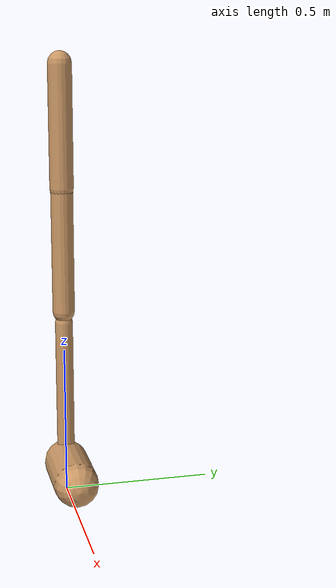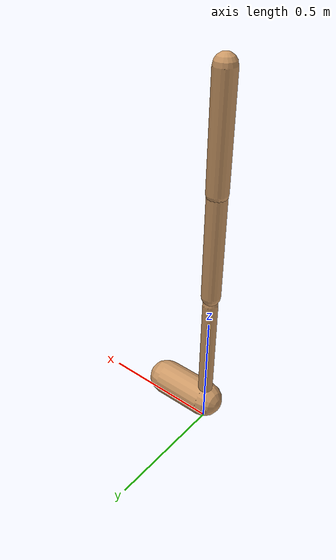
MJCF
<mujoco model="walker2d">
  <compiler angle="degree" coordinate="global" inertiafromgeom="true" />
  <default>
    <joint armature="0.01" damping=".1" limited="true" />
    <geom conaffinity="0" condim="3" contype="1" density="1000" friction="0.8 .1 .1" rgba="0.8 0.6 .4 1" />
  </default>
  <option integrator="RK4" timestep="0.002" />
  <worldbody>

    <body name="torso" pos="0 0 -0.07953006749627632">
      <joint armature="0" axis="1 0 0" damping="0" limited="false" name="ignorex" pos="0 0 0" stiffness="0" type="slide" />
      <joint armature="0" axis="0 0 1" damping="0" limited="false" name="ignorez" pos="0 0 0" ref="1.25" stiffness="0" type="slide" />
      <joint armature="0" axis="0 1 0" damping="0" limited="false" name="ignorey" pos="0 0 0" stiffness="0" type="hinge" />
      <geom fromto="0 0 1.45 0 0 1.05" name="torso_geom" size="0.0392865725409155" type="capsule" />
      <body name="thigh">
        <joint axis="0 -1 0" name="thigh_joint" pos="0 0 1.05" range="-150 0" type="hinge" />
        <geom fromto="0.0 0.0 1.05 0.0 0.0 0.6376721372350782" name="thigh_geom" size="0.03688157673789671" type="capsule" />
        <body name="leg" pos="0.0 0.0 0.03767213723507823">
          <joint axis="0 -1 0" name="leg_joint" pos="0 0 0.6" range="-150 0" type="hinge" />
          <geom fromto="0.0 0.0 0.6 0.0 0.0 0.14185793026119806" name="leg_geom" size="0.029505261390317363" type="capsule" />
          <body name="foot" pos="0.0 0.0 0.04185793026119805">
            <joint axis="0 -1 0" name="foot_joint" pos="0 0 0.1" range="-45 45" type="hinge" />
            <geom fromto="-0.0 0.0 0.1 0.20441279801362128 0.0 0.1" name="foot_geom" size="0.07359449234839383" type="capsule" />
          </body>
        </body>
      </body>

      <body name="thigh_left">
        <joint axis="0 -1 0" name="thigh_left_joint" pos="0 0 1.05" range="-150 0" type="hinge" />
        <geom fromto="0.0 0.0 1.05 0.0 0.0 0.6376721372350782" name="thigh_left_geom" rgba=".7 .3 .6 1" size="0.03688157673789671" type="capsule" />
        <body name="leg_left" pos="0.0 0.0 0.03767213723507823">
          <joint axis="0 -1 0" name="leg_left_joint" pos="0 0 0.6" range="-150 0" type="hinge" />
          <geom fromto="0.0 0.0 0.6 0.0 0.0 0.14185793026119806" name="leg_left_geom" rgba=".7 .3 .6 1" size="0.029505261390317363" type="capsule" />
          <body name="foot_left" pos="0.0 0.0 0.04185793026119805">
            <joint axis="0 -1 0" name="foot_left_joint" pos="0 0 0.1" range="-45 45" type="hinge" />
            <geom fromto="-0.0 0.0 0.1 0.20441279801362128 0.0 0.1" name="foot_left_geom" rgba=".7 .3 .6 1" size="0.07359449234839383" type="capsule" />
          </body>
        </body>
      </body>
    </body>
  </worldbody>
  <actuator>

    <motor ctrllimited="true" ctrlrange="-1.0 1.0" gear="100" joint="thigh_joint" />
    <motor ctrllimited="true" ctrlrange="-1.0 1.0" gear="100" joint="leg_joint" />
    <motor ctrllimited="true" ctrlrange="-1.0 1.0" gear="100" joint="foot_joint" />
    <motor ctrllimited="true" ctrlrange="-1.0 1.0" gear="100" joint="thigh_left_joint" />
    <motor ctrllimited="true" ctrlrange="-1.0 1.0" gear="100" joint="leg_left_joint" />
    <motor ctrllimited="true" ctrlrange="-1.0 1.0" gear="100" joint="foot_left_joint" />

  </actuator>
</mujoco>
